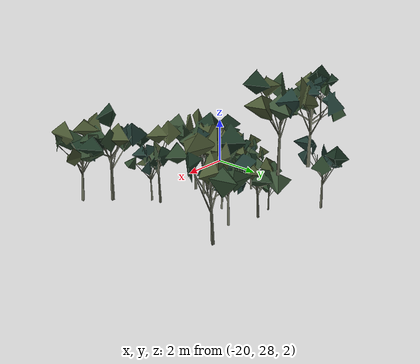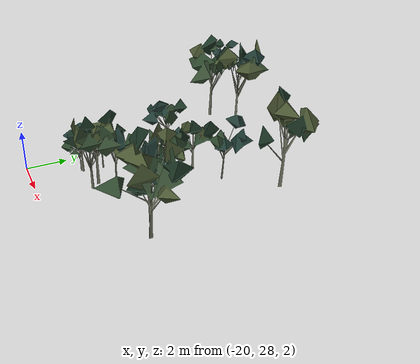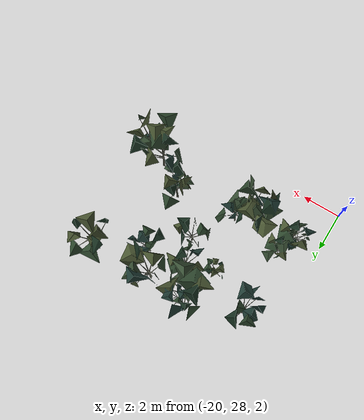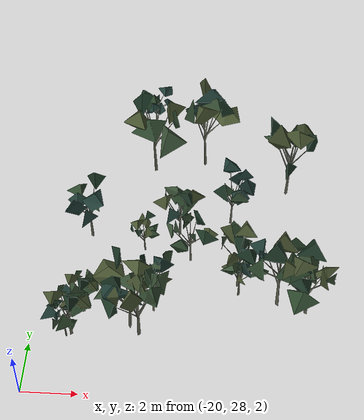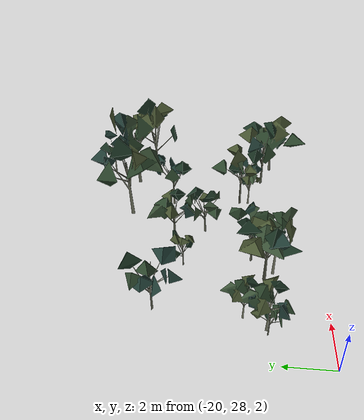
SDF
<sdf version="1.8">
 <model name="blue_mountains">
  <static>true</static>
  <link name="forest_18_23">
   <collision name="tree_28_trunk">
    <pose>-14.3843 33.17985 4.46975 0 0 2.274033</pose>
    <geometry><cylinder><radius>0.05024775</radius><length>2.572038</length></cylinder></geometry>
   </collision>
   <collision name="plant_28_crown_0">
    <pose>-14.3713 33.16452 3.183731 0 0 2.274033</pose>
    <geometry>
     <mesh><uri>model://blue_mountains/meshes/canopy_2_0.dae</uri><scale>0.200991 0.200991 0.1892387</scale></mesh>
    </geometry>
   </collision>
   <collision name="plant_28_crown_1">
    <pose>-14.3713 33.16452 3.183731 0 0 2.274033</pose>
    <geometry>
     <mesh><uri>model://blue_mountains/meshes/canopy_2_1.dae</uri><scale>0.200991 0.200991 0.1892387</scale></mesh>
    </geometry>
   </collision>
   <collision name="tree_73_trunk">
    <pose>-15.74617 36.28575 7.882521 0 0 -0.8113715</pose>
    <geometry><cylinder><radius>0.03291577</radius><length>1.865643</length></cylinder></geometry>
   </collision>
   <collision name="plant_73_crown_0">
    <pose>-15.75524 36.2953 6.949699 0 0 -0.8113715</pose>
    <geometry>
     <mesh>
      <uri>model://blue_mountains/meshes/canopy_4_0.dae</uri>
      <scale>0.1316631 0.1316631 0.1390215</scale>
     </mesh>
    </geometry>
   </collision>
   <collision name="plant_73_crown_1">
    <pose>-15.75524 36.2953 6.949699 0 0 -0.8113715</pose>
    <geometry>
     <mesh>
      <uri>model://blue_mountains/meshes/canopy_4_1.dae</uri>
      <scale>0.1316631 0.1316631 0.1390215</scale>
     </mesh>
    </geometry>
   </collision>
   <collision name="tree_95_trunk">
    <pose>-14.00746 35.94377 7.464498 0 0 -3.096903</pose>
    <geometry><cylinder><radius>0.06462635</radius><length>4.140724</length></cylinder></geometry>
   </collision>
   <collision name="plant_95_crown_0">
    <pose>-13.98164 35.94492 5.394136 0 0 -3.096903</pose>
    <geometry>
     <mesh>
      <uri>model://blue_mountains/meshes/canopy_1_0.dae</uri>
      <scale>0.2585054 0.2585054 0.3058372</scale>
     </mesh>
    </geometry>
   </collision>
   <collision name="plant_95_crown_1">
    <pose>-13.98164 35.94492 5.394136 0 0 -3.096903</pose>
    <geometry>
     <mesh>
      <uri>model://blue_mountains/meshes/canopy_1_1.dae</uri>
      <scale>0.2585054 0.2585054 0.3058372</scale>
     </mesh>
    </geometry>
   </collision>
   <collision name="tree_113_trunk">
    <pose>-12.93519 34.73279 5.132615 0 0 0.4321522</pose>
    <geometry><cylinder><radius>0.04892927</radius><length>3.142679</length></cylinder></geometry>
   </collision>
   <collision name="plant_113_crown_0">
    <pose>-12.95296 34.72459 3.561276 0 0 0.4321522</pose>
    <geometry>
     <mesh>
      <uri>model://blue_mountains/meshes/canopy_4_0.dae</uri>
      <scale>0.1957171 0.1957171 0.2341819</scale>
     </mesh>
    </geometry>
   </collision>
   <collision name="plant_113_crown_1">
    <pose>-12.95296 34.72459 3.561276 0 0 0.4321522</pose>
    <geometry>
     <mesh>
      <uri>model://blue_mountains/meshes/canopy_4_1.dae</uri>
      <scale>0.1957171 0.1957171 0.2341819</scale>
     </mesh>
    </geometry>
   </collision>
   <collision name="tree_124_trunk">
    <pose>-10.38439 30.36282 5.67987 0 0 2.068039</pose>
    <geometry><cylinder><radius>0.0704672</radius><length>3.347369</length></cylinder></geometry>
   </collision>
   <collision name="plant_124_crown_0">
    <pose>-10.37094 30.33804 4.006186 0 0 2.068039</pose>
    <geometry>
     <mesh>
      <uri>model://blue_mountains/meshes/canopy_8_0.dae</uri>
      <scale>0.2818688 0.2818688 0.2490743</scale>
     </mesh>
    </geometry>
   </collision>
   <collision name="plant_124_crown_1">
    <pose>-10.37094 30.33804 4.006186 0 0 2.068039</pose>
    <geometry>
     <mesh>
      <uri>model://blue_mountains/meshes/canopy_8_1.dae</uri>
      <scale>0.2818688 0.2818688 0.2490743</scale>
     </mesh>
    </geometry>
   </collision>
   <collision name="tree_161_trunk">
    <pose>-12.65604 31.71673 5.346843 0 0 -0.5348972</pose>
    <geometry><cylinder><radius>0.05560009</radius><length>3.554668</length></cylinder></geometry>
   </collision>
   <collision name="plant_161_crown_0">
    <pose>-12.67517 31.72807 3.569509 0 0 -0.5348972</pose>
    <geometry>
     <mesh>
      <uri>model://blue_mountains/meshes/canopy_8_0.dae</uri>
      <scale>0.2224004 0.2224004 0.2644992</scale>
     </mesh>
    </geometry>
   </collision>
   <collision name="plant_161_crown_1">
    <pose>-12.67517 31.72807 3.569509 0 0 -0.5348972</pose>
    <geometry>
     <mesh>
      <uri>model://blue_mountains/meshes/canopy_8_1.dae</uri>
      <scale>0.2224004 0.2224004 0.2644992</scale>
     </mesh>
    </geometry>
   </collision>
   <collision name="tree_169_trunk">
    <pose>-14.82284 34.44215 4.536982 0 0 -0.6770453</pose>
    <geometry><cylinder><radius>0.05806076</radius><length>2.903746</length></cylinder></geometry>
   </collision>
   <collision name="plant_169_crown_0">
    <pose>-14.84094 34.4567 3.085109 0 0 -0.6770453</pose>
    <geometry>
     <mesh><uri>model://blue_mountains/meshes/canopy_3_0.dae</uri><scale>0.232243 0.232243 0.21588</scale></mesh>
    </geometry>
   </collision>
   <collision name="plant_169_crown_1">
    <pose>-14.84094 34.4567 3.085109 0 0 -0.6770453</pose>
    <geometry>
     <mesh><uri>model://blue_mountains/meshes/canopy_3_1.dae</uri><scale>0.232243 0.232243 0.21588</scale></mesh>
    </geometry>
   </collision>
   <collision name="tree_191_trunk">
    <pose>-16.12127 33.92143 3.78901 0 0 -2.455462</pose>
    <geometry><cylinder><radius>0.03580462</radius><length>2.038955</length></cylinder></geometry>
   </collision>
   <collision name="plant_191_crown_0">
    <pose>-16.11019 33.9305 2.769533 0 0 -2.455462</pose>
    <geometry>
     <mesh>
      <uri>model://blue_mountains/meshes/canopy_0_0.dae</uri>
      <scale>0.1432185 0.1432185 0.1503718</scale>
     </mesh>
    </geometry>
   </collision>
   <collision name="plant_191_crown_1">
    <pose>-16.11019 33.9305 2.769533 0 0 -2.455462</pose>
    <geometry>
     <mesh>
      <uri>model://blue_mountains/meshes/canopy_0_1.dae</uri>
      <scale>0.1432185 0.1432185 0.1503718</scale>
     </mesh>
    </geometry>
   </collision>
   <collision name="tree_216_trunk">
    <pose>-16.37407 30.55552 4.432976 0 0 -0.4294298</pose>
    <geometry><cylinder><radius>0.07248509</radius><length>3.867559</length></cylinder></geometry>
   </collision>
   <collision name="plant_216_crown_0">
    <pose>-16.40043 30.56759 2.499196 0 0 -0.4294298</pose>
    <geometry>
     <mesh>
      <uri>model://blue_mountains/meshes/canopy_1_0.dae</uri>
      <scale>0.2899403 0.2899403 0.2856611</scale>
     </mesh>
    </geometry>
   </collision>
   <collision name="plant_216_crown_1">
    <pose>-16.40043 30.56759 2.499196 0 0 -0.4294298</pose>
    <geometry>
     <mesh>
      <uri>model://blue_mountains/meshes/canopy_1_1.dae</uri>
      <scale>0.2899403 0.2899403 0.2856611</scale>
     </mesh>
    </geometry>
   </collision>
   <collision name="tree_259_trunk">
    <pose>-15.81574 35.86422 7.192938 0 0 2.859199</pose>
    <geometry><cylinder><radius>0.07285782</radius><length>4.152978</length></cylinder></geometry>
   </collision>
   <collision name="plant_259_crown_0">
    <pose>-15.78776 35.8561 5.116449 0 0 2.859199</pose>
    <geometry>
     <mesh>
      <uri>model://blue_mountains/meshes/canopy_3_0.dae</uri>
      <scale>0.2914313 0.2914313 0.3087546</scale>
     </mesh>
    </geometry>
   </collision>
   <collision name="plant_259_crown_1">
    <pose>-15.78776 35.8561 5.116449 0 0 2.859199</pose>
    <geometry>
     <mesh>
      <uri>model://blue_mountains/meshes/canopy_3_1.dae</uri>
      <scale>0.2914313 0.2914313 0.3087546</scale>
     </mesh>
    </geometry>
   </collision>
   <collision name="tree_260_trunk">
    <pose>-18.5224 30.45669 3.51478 0 0 -1.181651</pose>
    <geometry><cylinder><radius>0.05842524</radius><length>2.965399</length></cylinder></geometry>
   </collision>
   <collision name="plant_260_crown_0">
    <pose>-18.53126 30.47831 2.03208 0 0 -1.181651</pose>
    <geometry>
     <mesh><uri>model://blue_mountains/meshes/canopy_3_0.dae</uri><scale>0.233701 0.233701 0.2204636</scale></mesh>
    </geometry>
   </collision>
   <collision name="plant_260_crown_1">
    <pose>-18.53126 30.47831 2.03208 0 0 -1.181651</pose>
    <geometry>
     <mesh><uri>model://blue_mountains/meshes/canopy_3_1.dae</uri><scale>0.233701 0.233701 0.2204636</scale></mesh>
    </geometry>
   </collision>
   <collision name="tree_283_trunk">
    <pose>-15.57898 31.12093 4.403723 0 0 0.008436585</pose>
    <geometry><cylinder><radius>0.05077383</radius><length>3.294165</length></cylinder></geometry>
   </collision>
   <collision name="plant_283_crown_0">
    <pose>-15.59929 31.12076 2.756641 0 0 0.008436585</pose>
    <geometry>
     <mesh><uri>model://blue_mountains/meshes/canopy_6_0.dae</uri><scale>0.2030953 0.2030953 0.24282</scale></mesh>
    </geometry>
   </collision>
   <collision name="plant_283_crown_1">
    <pose>-15.59929 31.12076 2.756641 0 0 0.008436585</pose>
    <geometry>
     <mesh><uri>model://blue_mountains/meshes/canopy_6_1.dae</uri><scale>0.2030953 0.2030953 0.24282</scale></mesh>
    </geometry>
   </collision>
   <collision name="tree_296_trunk">
    <pose>-11.34013 30.74541 5.843089 0 0 -2.431472</pose>
    <geometry><cylinder><radius>0.0691415</radius><length>4.018331</length></cylinder></geometry>
   </collision>
   <collision name="plant_296_crown_0">
    <pose>-11.31915 30.76344 3.833923 0 0 -2.431472</pose>
    <geometry>
     <mesh><uri>model://blue_mountains/meshes/canopy_3_0.dae</uri><scale>0.276566 0.276566 0.2987442</scale></mesh>
    </geometry>
   </collision>
   <collision name="plant_296_crown_1">
    <pose>-11.31915 30.76344 3.833923 0 0 -2.431472</pose>
    <geometry>
     <mesh><uri>model://blue_mountains/meshes/canopy_3_1.dae</uri><scale>0.276566 0.276566 0.2987442</scale></mesh>
    </geometry>
   </collision>
   <collision name="tree_386_trunk">
    <pose>-18.72257 30.41677 3.098969 0 0 -2.552226</pose>
    <geometry><cylinder><radius>0.03618328</radius><length>2.221451</length></cylinder></geometry>
   </collision>
   <collision name="plant_386_crown_0">
    <pose>-18.71054 30.42482 1.988243 0 0 -2.552226</pose>
    <geometry>
     <mesh>
      <uri>model://blue_mountains/meshes/canopy_2_0.dae</uri>
      <scale>0.1447331 0.1447331 0.1634441</scale>
     </mesh>
    </geometry>
   </collision>
   <collision name="plant_386_crown_1">
    <pose>-18.71054 30.42482 1.988243 0 0 -2.552226</pose>
    <geometry>
     <mesh>
      <uri>model://blue_mountains/meshes/canopy_2_1.dae</uri>
      <scale>0.1447331 0.1447331 0.1634441</scale>
     </mesh>
    </geometry>
   </collision>
   <collision name="tree_396_trunk">
    <pose>-10.87732 35.86113 6.193182 0 0 -0.6902656</pose>
    <geometry><cylinder><radius>0.06955375</radius><length>4.28388</length></cylinder></geometry>
   </collision>
   <collision name="plant_396_crown_0">
    <pose>-10.89877 35.87885 4.051242 0 0 -0.6902656</pose>
    <geometry>
     <mesh><uri>model://blue_mountains/meshes/canopy_0_0.dae</uri><scale>0.278215 0.278215 0.3159337</scale></mesh>
    </geometry>
   </collision>
   <collision name="plant_396_crown_1">
    <pose>-10.89877 35.87885 4.051242 0 0 -0.6902656</pose>
    <geometry>
     <mesh><uri>model://blue_mountains/meshes/canopy_0_1.dae</uri><scale>0.278215 0.278215 0.3159337</scale></mesh>
    </geometry>
   </collision>
   <collision name="tree_399_trunk">
    <pose>-16.06469 30.1849 4.433963 0 0 -1.225399</pose>
    <geometry><cylinder><radius>0.06824466</radius><length>3.793217</length></cylinder></geometry>
   </collision>
   <collision name="plant_399_crown_0">
    <pose>-16.07393 30.21059 2.537354 0 0 -1.225399</pose>
    <geometry>
     <mesh>
      <uri>model://blue_mountains/meshes/canopy_5_0.dae</uri>
      <scale>0.2729787 0.2729787 0.2851155</scale>
     </mesh>
    </geometry>
   </collision>
   <collision name="plant_399_crown_1">
    <pose>-16.07393 30.21059 2.537354 0 0 -1.225399</pose>
    <geometry>
     <mesh>
      <uri>model://blue_mountains/meshes/canopy_5_1.dae</uri>
      <scale>0.2729787 0.2729787 0.2851155</scale>
     </mesh>
    </geometry>
   </collision>
   <collision name="tree_410_trunk">
    <pose>-18.22514 34.85242 4.121312 0 0 -2.377495</pose>
    <geometry><cylinder><radius>0.05704308</radius><length>3.431543</length></cylinder></geometry>
   </collision>
   <collision name="plant_410_crown_0">
    <pose>-18.20867 34.86821 2.40554 0 0 -2.377495</pose>
    <geometry>
     <mesh>
      <uri>model://blue_mountains/meshes/canopy_4_0.dae</uri>
      <scale>0.2281723 0.2281723 0.2557071</scale>
     </mesh>
    </geometry>
   </collision>
   <collision name="plant_410_crown_1">
    <pose>-18.20867 34.86821 2.40554 0 0 -2.377495</pose>
    <geometry>
     <mesh>
      <uri>model://blue_mountains/meshes/canopy_4_1.dae</uri>
      <scale>0.2281723 0.2281723 0.2557071</scale>
     </mesh>
    </geometry>
   </collision>
   <collision name="tree_411_trunk">
    <pose>-12.63936 31.32022 4.737957 0 0 -1.285385</pose>
    <geometry><cylinder><radius>0.04571734</radius><length>2.371277</length></cylinder></geometry>
   </collision>
   <collision name="plant_411_crown_0">
    <pose>-12.64451 31.33776 3.552319 0 0 -1.285385</pose>
    <geometry>
     <mesh>
      <uri>model://blue_mountains/meshes/canopy_6_0.dae</uri>
      <scale>0.1828694 0.1828694 0.174792</scale>
     </mesh>
    </geometry>
   </collision>
   <collision name="plant_411_crown_1">
    <pose>-12.64451 31.33776 3.552319 0 0 -1.285385</pose>
    <geometry>
     <mesh>
      <uri>model://blue_mountains/meshes/canopy_6_1.dae</uri>
      <scale>0.1828694 0.1828694 0.174792</scale>
     </mesh>
    </geometry>
   </collision>
   <collision name="tree_416_trunk">
    <pose>-18.16391 31.36418 3.454706 0 0 -1.351592</pose>
    <geometry><cylinder><radius>0.04545885</radius><length>2.507597</length></cylinder></geometry>
   </collision>
   <collision name="plant_416_crown_0">
    <pose>-18.16786 31.38193 2.200907 0 0 -1.351592</pose>
    <geometry>
     <mesh>
      <uri>model://blue_mountains/meshes/canopy_3_0.dae</uri>
      <scale>0.1818354 0.1818354 0.1864282</scale>
     </mesh>
    </geometry>
   </collision>
   <collision name="plant_416_crown_1">
    <pose>-18.16786 31.38193 2.200907 0 0 -1.351592</pose>
    <geometry>
     <mesh>
      <uri>model://blue_mountains/meshes/canopy_3_1.dae</uri>
      <scale>0.1818354 0.1818354 0.1864282</scale>
     </mesh>
    </geometry>
   </collision>
   <visual name="forest_visual">
    <geometry><mesh><uri>model://blue_mountains/meshes/forest_18_23.dae</uri></mesh></geometry>
    <cast_shadows>false</cast_shadows>
   </visual>
  </link>
 </model>
</sdf>
